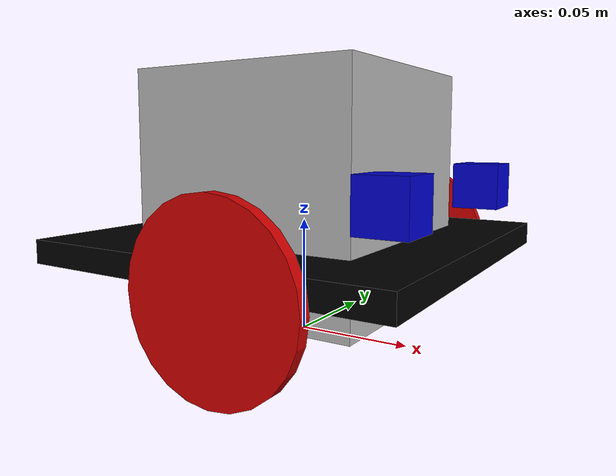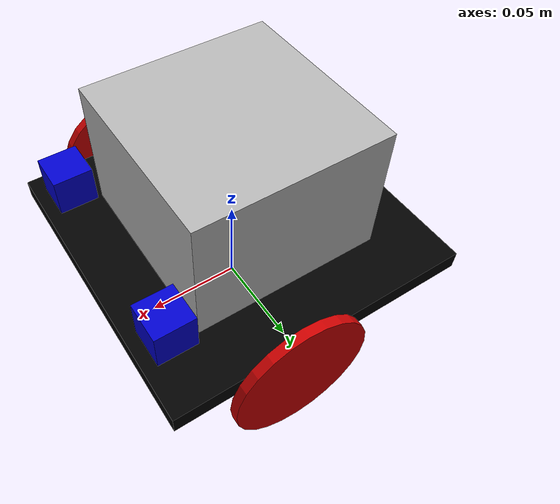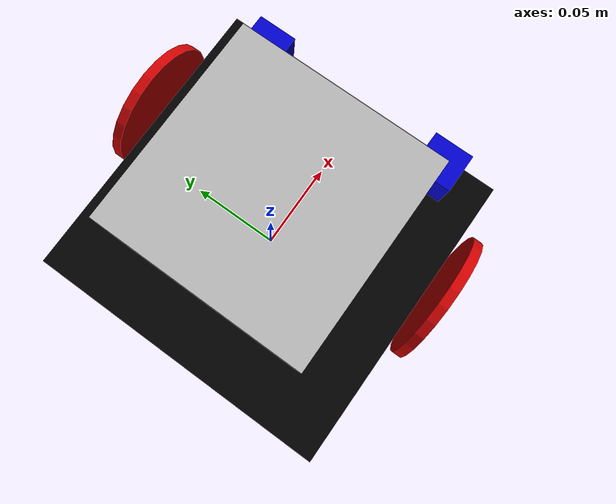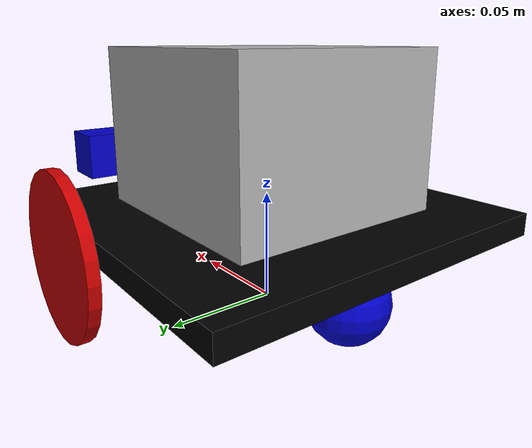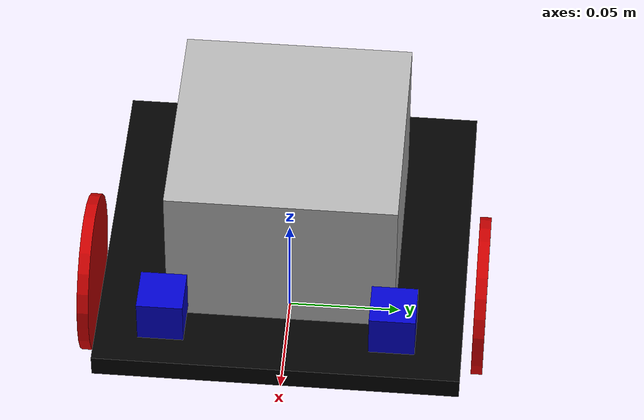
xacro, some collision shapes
<?xml version="1.0"?>
<robot xmlns:xacro="http://www.ros.org/wiki/xacro" name="MYROBOT">
  <xacro:include filename="$(find demo_bot_gazebo)/urdf/MYROBOT.gazebo" />
  <xacro:property name="base_width" value="0.16"/>
  <xacro:property name="base_len" value="0.16"/>
  <xacro:property name="wheel_radius" value="0.035"/>
  <xacro:property name="base_wheel_gap" value="0.007"/>
  <xacro:property name="wheel_separation" value="0.15"/>
  <xacro:property name="wheel_joint_offset" value="0.02"/>

  <xacro:property name="caster_wheel_radius" value="${wheel_radius/2}"/>
  <xacro:property name="caster_wheel_mass" value="0.001"/>
  <xacro:property name="caster_wheel_joint_offset" value="-0.052"/>

  <xacro:property name="camera_size" value="0.02"/>
  <xacro:property name="camera_origin_x" value="0.065"/>
  <xacro:property name="camera_origin_y" value="0"/>
  <xacro:property name="camera_origin_z" value="0.025"/>

  <!--Color Properties-->
  <material name="blue">
    <color rgba="0 0 0.8 1"/>
  </material>
  <material name="black">
    <color rgba="0 0 0 1"/>
  </material>
  <material name="white">
    <color rgba="1 1 1 1"/>
  </material>
  <material name="red">
    <color rgba="0.8 0.0 0.0 1.0"/>
  </material>

  <xacro:macro name="default_inertial" params="mass">
    <inertial>
      <mass value="${mass}"/>
      <inertia ixx="1.0" ixy="0.0" ixz="0.0" iyy="1.0" iyz="0.0" izz="1.0"/>
    </inertial>
  </xacro:macro>

  <!--Interial macros-->
  <xacro:macro name="cylinder_inertia" params="m r h">
    <inertial>
      <mass value="${m}"/>
      <inertia ixx="${m*(3*r*r+h*h)/12}" ixy = "0" ixz = "0" iyy="${m*(3*r*r+h*h)/12}" iyz = "0" izz="${m*r*r/2}"/>
    </inertial>
  </xacro:macro>

  <xacro:macro name="box_inertia" params="m w h d">
    <inertial>
      <mass value="${m}"/>
      <inertia ixx="${m / 12.0 * (d*d + h*h)}" ixy="0.0" ixz="0.0" iyy="${m / 12.0 * (w*w + h*h)}" iyz="0.0" izz="${m / 12.0 * (w*w + d*d)}"/>
    </inertial>
  </xacro:macro>

  <xacro:macro name="sphere_inertia" params="m r">
    <inertial>
      <mass value="${m}"/>
      <inertia ixx="${2.0*m*(r*r)/5.0}" ixy="0.0" ixz="0.0" iyy="${2.0*m*(r*r)/5.0}" iyz="0.0" izz="${2.0*m*(r*r)/5.0}"/>
    </inertial>
  </xacro:macro>

  <!--Base Footprint-->
  <link name="base_footprint">
    <xacro:box_inertia m="0" w="0.001" h="0.001" d="0.001"/>
    <visual>
        <origin xyz="0 0 0" rpy="0 0 0" />
        <geometry>
            <box size="0.001 0.001 0.001" />
        </geometry>
    </visual>
  </link>

  <!--Base link-->
  <link name="base_link">
    <xacro:box_inertia m="1" w="${base_len}" h="${base_width}" d="0.01"/>
    <visual>
      <geometry>
        <box size="${base_len} ${base_width} 0.01"/>
      </geometry>
      <material name="black"/>
    </visual>
    <collision>
      <geometry>
        <box size="${base_len} ${base_width} 0.01"/>
      </geometry>
    </collision>
  </link>

  <!--base_link to base_footprint Joint-->
  <joint name="base_link_joint" type="fixed">
    <origin xyz="0 0 ${wheel_radius + 0.005}" rpy="0 0 0" />
    <parent link="base_footprint"/>
    <child link="base_link" />
  </joint>

  <!--Wheel link & joint macro-->
  <xacro:macro name="wheel" params="prefix reflect">
    <link name="${prefix}_wheel">
      <visual>
        <origin xyz="0 0 0" rpy="${pi/2} 0 0"/>
        <geometry>
          <cylinder radius="${wheel_radius}" length="0.005"/>
        </geometry>
        <material name="red"/>
      </visual>
      <collision>
        <origin xyz="0 0 0" rpy="${pi/2} 0 0"/>
        <geometry>
          <cylinder radius="${wheel_radius}" length="0.005"/>
        </geometry>
      </collision>
      <xacro:cylinder_inertia m="1" r="${wheel_radius}" h="0.005"/>
    </link>

    <joint name="${prefix}_wheel_joint" type="continuous">
      <axis xyz="0 1 0" rpy="0 0 0" />
      <parent link="base_link"/>
      <child link="${prefix}_wheel"/>
      <origin xyz="${wheel_joint_offset} ${((base_width/2)+base_wheel_gap)*reflect} -0.005" rpy="0 0 0"/>
      <limit effort="10000" velocity="1000" />
      <dynamics damping="1.0" friction="1.0" />
    </joint>
  </xacro:macro>

  <!--Create Left & Right Wheel links/joints-->
  <xacro:wheel prefix="left" reflect="1"/>
  <xacro:wheel prefix="right" reflect="-1"/>

  <!--Caster Wheel Link-->
  <link name="caster_wheel">
    <visual>
      <origin xyz="0 0 0" rpy="0 0 0"/>
      <geometry>
        <sphere radius="${caster_wheel_radius}"/>
      </geometry>
      <material name="blue"/>
    </visual>
    <collision>
      <origin xyz="0 0 0" rpy="0 0 0"/>
      <geometry>
        <sphere radius="${caster_wheel_radius}"/>
      </geometry>
    </collision>
    <xacro:sphere_inertia m="1" r="${caster_wheel_radius}"/>
  </link>

  <!--Caster Wheel Joint-->
  <joint name="caster_wheel_joint" type="continuous">
    <axis xyz="0 1 0" rpy="0 0 0" />
    <parent link="base_link"/>
    <child link="caster_wheel"/>
    <origin xyz="${caster_wheel_joint_offset} 0 -${caster_wheel_radius+0.005}" rpy="0 0 0"/>
  </joint>

  <!--Camera-->
  <link name="camera1">
    <visual>
      <geometry>
        <box size="${camera_size} ${camera_size} ${camera_size}"/>
      </geometry>
      <material name="blue"/>
    </visual>
    <collision>
      <geometry>
        <box size="${camera_size} ${camera_size} ${camera_size}"/>
      </geometry>
    </collision>
    <xacro:default_inertial mass="0.02"/>
  </link>

  <joint name="camera_joint1" type="fixed">
    <origin xyz="${camera_origin_x} ${camera_origin_y+0.05} ${camera_origin_z}" rpy="0 0 0"/>
    <parent link="base_link"/>
    <child link="camera1"/>
  </joint>

  <!--Camera-->
  <link name="camera2">
    <visual>
      <geometry>
        <box size="${camera_size} ${camera_size} ${camera_size}"/>
      </geometry>
      <material name="blue"/>
    </visual>
    <collision>
      <geometry>
        <box size="${camera_size} ${camera_size} ${camera_size}"/>
      </geometry>
    </collision>
    <xacro:default_inertial mass="0.02"/>
  </link>

  <joint name="camera_joint2" type="fixed">
    <origin xyz="${camera_origin_x} ${camera_origin_y-0.05} ${camera_origin_z}" rpy="0 0 0"/>
    <parent link="base_link"/>
    <child link="camera2"/>
  </joint>

    <link name="hokuyo">
    <inertial>
      <mass value="1e-5"/>
      <origin xyz="0 0 0" rpy="0 0 0"/>
      <inertia
        ixx="1e-6" ixy="0.0" ixz="0.0"
        iyy="1e-6" iyz="0.0"
        izz="1e-6"
      />
    </inertial>

    <collision>
      <origin xyz="0 0 0" rpy="0 0 0"/>
      <geometry>
        <box size="0.1 0.1 0.1"/>
      </geometry>
    </collision>

    <visual>
      <origin xyz="0 0 0" rpy="0 0 0"/>
      <geometry>
        <mesh filename="package://demo_bot_gazebo/meshes/hokuyo.dae"/>
      </geometry>
    </visual>

   </link>

   <joint name="hokuyo_joint" type="fixed">
    <origin xyz="0 0 0.025" rpy="0 0 0" />
    <parent link="base_link"/>
    <child link="hokuyo" />
    <axis xyz="0 1 0"/>
  </joint>

</robot>
